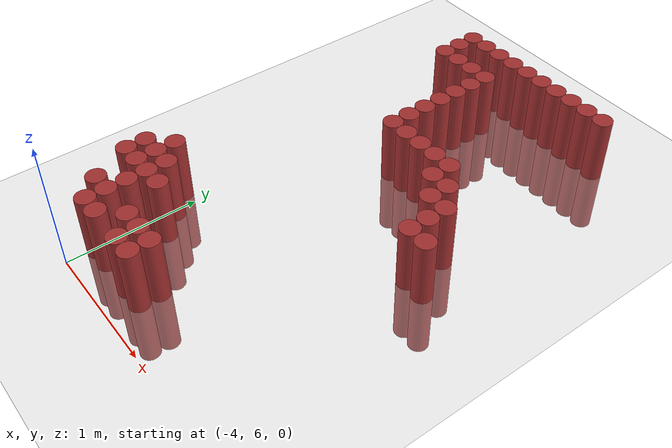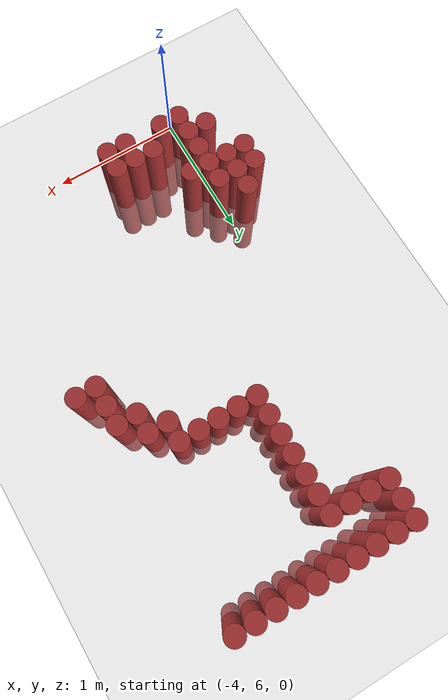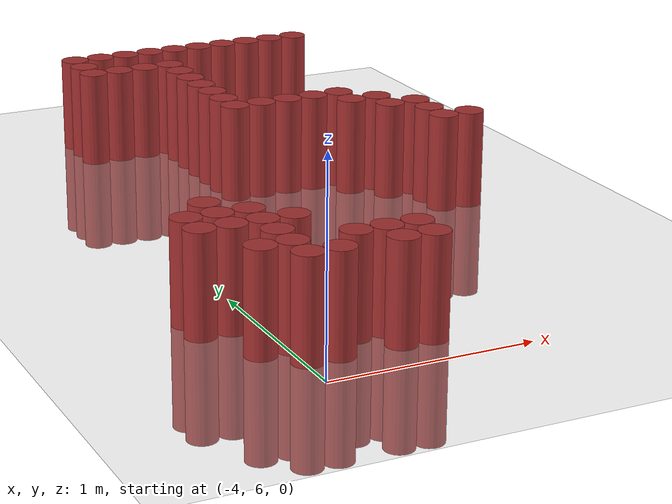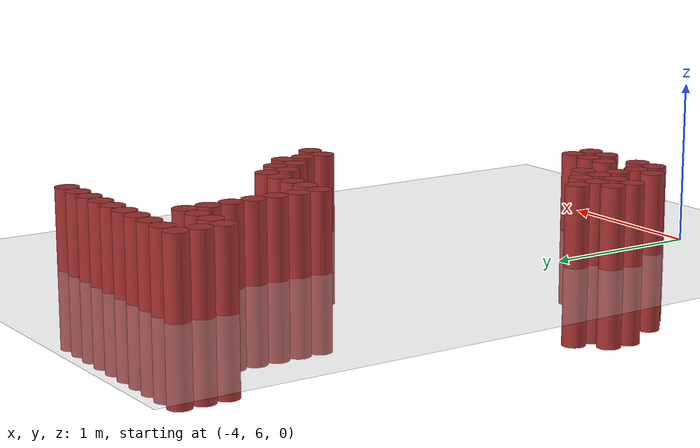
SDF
<sdf version="1.6">
 <world name="default">
  <model name="ground_plane">
   <static>1</static>
   <link name="link">
    <collision name="collision">
     <geometry><plane><normal>0 0 1</normal><size>100 100</size></plane></geometry>
     <surface><friction><ode><mu>100</mu><mu2>50</mu2></ode></friction></surface>
    </collision>
    <visual name="visual">
     <cast_shadows>0</cast_shadows>
     <geometry><plane><normal>0 0 1</normal><size>100 100</size></plane></geometry>
     <material>
      <script><uri>file://media/materials/scripts/gazebo.material</uri><name>Gazebo/Grey</name></script>
     </material>
    </visual>
   </link>
  </model>
  <model name="unit_cylinder_263">
   <static>1</static>
   <pose>-4.275000 6.675000 0.000000 0.000000 0.000000 0.000000</pose>
   <link name="link">
    <inertial>
     <mass>1</mass>
     <inertia><ixx>0.145833</ixx><ixy>0</ixy><ixz>0</ixz><iyy>0.145833</iyy><iyz>0</iyz><izz>0.125</izz></inertia>
    </inertial>
    <collision name="collision">
     <geometry><cylinder><radius>0.075000</radius><length>1</length></cylinder></geometry>
    </collision>
    <visual name="visual">
     <geometry><cylinder><radius>0.075000</radius><length>1</length></cylinder></geometry>
     <material>
      <ambient>0.648000 0.192000 0.192000 1</ambient>
      <diffuse>0.648000 0.192000 0.192000 1</diffuse>
     </material>
     <material>
      <script><name>Gazebo/Grey</name><uri>file://media/materials/scripts/gazebo.material</uri></script>
     </material>
    </visual>
   </link>
  </model>
  <model name="unit_cylinder_264">
   <static>1</static>
   <pose>-4.275000 6.825000 0.000000 0.000000 0.000000 0.000000</pose>
   <link name="link">
    <inertial>
     <mass>1</mass>
     <inertia><ixx>0.145833</ixx><ixy>0</ixy><ixz>0</ixz><iyy>0.145833</iyy><iyz>0</iyz><izz>0.125</izz></inertia>
    </inertial>
    <collision name="collision">
     <geometry><cylinder><radius>0.075000</radius><length>1</length></cylinder></geometry>
    </collision>
    <visual name="visual">
     <geometry><cylinder><radius>0.075000</radius><length>1</length></cylinder></geometry>
     <material>
      <ambient>0.648000 0.192000 0.192000 1</ambient>
      <diffuse>0.648000 0.192000 0.192000 1</diffuse>
     </material>
     <material>
      <script><name>Gazebo/Grey</name><uri>file://media/materials/scripts/gazebo.material</uri></script>
     </material>
    </visual>
   </link>
  </model>
  <model name="unit_cylinder_265">
   <static>1</static>
   <pose>-4.125000 6.375000 0.000000 0.000000 0.000000 0.000000</pose>
   <link name="link">
    <inertial>
     <mass>1</mass>
     <inertia><ixx>0.145833</ixx><ixy>0</ixy><ixz>0</ixz><iyy>0.145833</iyy><iyz>0</iyz><izz>0.125</izz></inertia>
    </inertial>
    <collision name="collision">
     <geometry><cylinder><radius>0.075000</radius><length>1</length></cylinder></geometry>
    </collision>
    <visual name="visual">
     <geometry><cylinder><radius>0.075000</radius><length>1</length></cylinder></geometry>
     <material>
      <ambient>0.648000 0.192000 0.192000 1</ambient>
      <diffuse>0.648000 0.192000 0.192000 1</diffuse>
     </material>
     <material>
      <script><name>Gazebo/Grey</name><uri>file://media/materials/scripts/gazebo.material</uri></script>
     </material>
    </visual>
   </link>
  </model>
  <model name="unit_cylinder_266">
   <static>1</static>
   <pose>-4.125000 6.675000 0.000000 0.000000 0.000000 0.000000</pose>
   <link name="link">
    <inertial>
     <mass>1</mass>
     <inertia><ixx>0.145833</ixx><ixy>0</ixy><ixz>0</ixz><iyy>0.145833</iyy><iyz>0</iyz><izz>0.125</izz></inertia>
    </inertial>
    <collision name="collision">
     <geometry><cylinder><radius>0.075000</radius><length>1</length></cylinder></geometry>
    </collision>
    <visual name="visual">
     <geometry><cylinder><radius>0.075000</radius><length>1</length></cylinder></geometry>
     <material>
      <ambient>0.648000 0.192000 0.192000 1</ambient>
      <diffuse>0.648000 0.192000 0.192000 1</diffuse>
     </material>
     <material>
      <script><name>Gazebo/Grey</name><uri>file://media/materials/scripts/gazebo.material</uri></script>
     </material>
    </visual>
   </link>
  </model>
  <model name="unit_cylinder_267">
   <static>1</static>
   <pose>-4.125000 6.825000 0.000000 0.000000 0.000000 0.000000</pose>
   <link name="link">
    <inertial>
     <mass>1</mass>
     <inertia><ixx>0.145833</ixx><ixy>0</ixy><ixz>0</ixz><iyy>0.145833</iyy><iyz>0</iyz><izz>0.125</izz></inertia>
    </inertial>
    <collision name="collision">
     <geometry><cylinder><radius>0.075000</radius><length>1</length></cylinder></geometry>
    </collision>
    <visual name="visual">
     <geometry><cylinder><radius>0.075000</radius><length>1</length></cylinder></geometry>
     <material>
      <ambient>0.648000 0.192000 0.192000 1</ambient>
      <diffuse>0.648000 0.192000 0.192000 1</diffuse>
     </material>
     <material>
      <script><name>Gazebo/Grey</name><uri>file://media/materials/scripts/gazebo.material</uri></script>
     </material>
    </visual>
   </link>
  </model>
  <model name="unit_cylinder_268">
   <static>1</static>
   <pose>-4.125000 6.975000 0.000000 0.000000 0.000000 0.000000</pose>
   <link name="link">
    <inertial>
     <mass>1</mass>
     <inertia><ixx>0.145833</ixx><ixy>0</ixy><ixz>0</ixz><iyy>0.145833</iyy><iyz>0</iyz><izz>0.125</izz></inertia>
    </inertial>
    <collision name="collision">
     <geometry><cylinder><radius>0.075000</radius><length>1</length></cylinder></geometry>
    </collision>
    <visual name="visual">
     <geometry><cylinder><radius>0.075000</radius><length>1</length></cylinder></geometry>
     <material>
      <ambient>0.648000 0.192000 0.192000 1</ambient>
      <diffuse>0.648000 0.192000 0.192000 1</diffuse>
     </material>
     <material>
      <script><name>Gazebo/Grey</name><uri>file://media/materials/scripts/gazebo.material</uri></script>
     </material>
    </visual>
   </link>
  </model>
  <model name="unit_cylinder_270">
   <static>1</static>
   <pose>-3.975000 6.225000 0.000000 0.000000 0.000000 0.000000</pose>
   <link name="link">
    <inertial>
     <mass>1</mass>
     <inertia><ixx>0.145833</ixx><ixy>0</ixy><ixz>0</ixz><iyy>0.145833</iyy><iyz>0</iyz><izz>0.125</izz></inertia>
    </inertial>
    <collision name="collision">
     <geometry><cylinder><radius>0.075000</radius><length>1</length></cylinder></geometry>
    </collision>
    <visual name="visual">
     <geometry><cylinder><radius>0.075000</radius><length>1</length></cylinder></geometry>
     <material>
      <ambient>0.648000 0.192000 0.192000 1</ambient>
      <diffuse>0.648000 0.192000 0.192000 1</diffuse>
     </material>
     <material>
      <script><name>Gazebo/Grey</name><uri>file://media/materials/scripts/gazebo.material</uri></script>
     </material>
    </visual>
   </link>
  </model>
  <model name="unit_cylinder_271">
   <static>1</static>
   <pose>-3.975000 6.375000 0.000000 0.000000 0.000000 0.000000</pose>
   <link name="link">
    <inertial>
     <mass>1</mass>
     <inertia><ixx>0.145833</ixx><ixy>0</ixy><ixz>0</ixz><iyy>0.145833</iyy><iyz>0</iyz><izz>0.125</izz></inertia>
    </inertial>
    <collision name="collision">
     <geometry><cylinder><radius>0.075000</radius><length>1</length></cylinder></geometry>
    </collision>
    <visual name="visual">
     <geometry><cylinder><radius>0.075000</radius><length>1</length></cylinder></geometry>
     <material>
      <ambient>0.648000 0.192000 0.192000 1</ambient>
      <diffuse>0.648000 0.192000 0.192000 1</diffuse>
     </material>
     <material>
      <script><name>Gazebo/Grey</name><uri>file://media/materials/scripts/gazebo.material</uri></script>
     </material>
    </visual>
   </link>
  </model>
  <model name="unit_cylinder_272">
   <static>1</static>
   <pose>-3.975000 6.525000 0.000000 0.000000 0.000000 0.000000</pose>
   <link name="link">
    <inertial>
     <mass>1</mass>
     <inertia><ixx>0.145833</ixx><ixy>0</ixy><ixz>0</ixz><iyy>0.145833</iyy><iyz>0</iyz><izz>0.125</izz></inertia>
    </inertial>
    <collision name="collision">
     <geometry><cylinder><radius>0.075000</radius><length>1</length></cylinder></geometry>
    </collision>
    <visual name="visual">
     <geometry><cylinder><radius>0.075000</radius><length>1</length></cylinder></geometry>
     <material>
      <ambient>0.648000 0.192000 0.192000 1</ambient>
      <diffuse>0.648000 0.192000 0.192000 1</diffuse>
     </material>
     <material>
      <script><name>Gazebo/Grey</name><uri>file://media/materials/scripts/gazebo.material</uri></script>
     </material>
    </visual>
   </link>
  </model>
  <model name="unit_cylinder_273">
   <static>1</static>
   <pose>-3.975000 6.675000 0.000000 0.000000 0.000000 0.000000</pose>
   <link name="link">
    <inertial>
     <mass>1</mass>
     <inertia><ixx>0.145833</ixx><ixy>0</ixy><ixz>0</ixz><iyy>0.145833</iyy><iyz>0</iyz><izz>0.125</izz></inertia>
    </inertial>
    <collision name="collision">
     <geometry><cylinder><radius>0.075000</radius><length>1</length></cylinder></geometry>
    </collision>
    <visual name="visual">
     <geometry><cylinder><radius>0.075000</radius><length>1</length></cylinder></geometry>
     <material>
      <ambient>0.648000 0.192000 0.192000 1</ambient>
      <diffuse>0.648000 0.192000 0.192000 1</diffuse>
     </material>
     <material>
      <script><name>Gazebo/Grey</name><uri>file://media/materials/scripts/gazebo.material</uri></script>
     </material>
    </visual>
   </link>
  </model>
  <model name="unit_cylinder_274">
   <static>1</static>
   <pose>-3.975000 6.825000 0.000000 0.000000 0.000000 0.000000</pose>
   <link name="link">
    <inertial>
     <mass>1</mass>
     <inertia><ixx>0.145833</ixx><ixy>0</ixy><ixz>0</ixz><iyy>0.145833</iyy><iyz>0</iyz><izz>0.125</izz></inertia>
    </inertial>
    <collision name="collision">
     <geometry><cylinder><radius>0.075000</radius><length>1</length></cylinder></geometry>
    </collision>
    <visual name="visual">
     <geometry><cylinder><radius>0.075000</radius><length>1</length></cylinder></geometry>
     <material>
      <ambient>0.648000 0.192000 0.192000 1</ambient>
      <diffuse>0.648000 0.192000 0.192000 1</diffuse>
     </material>
     <material>
      <script><name>Gazebo/Grey</name><uri>file://media/materials/scripts/gazebo.material</uri></script>
     </material>
    </visual>
   </link>
  </model>
  <model name="unit_cylinder_276">
   <static>1</static>
   <pose>-3.825000 6.225000 0.000000 0.000000 0.000000 0.000000</pose>
   <link name="link">
    <inertial>
     <mass>1</mass>
     <inertia><ixx>0.145833</ixx><ixy>0</ixy><ixz>0</ixz><iyy>0.145833</iyy><iyz>0</iyz><izz>0.125</izz></inertia>
    </inertial>
    <collision name="collision">
     <geometry><cylinder><radius>0.075000</radius><length>1</length></cylinder></geometry>
    </collision>
    <visual name="visual">
     <geometry><cylinder><radius>0.075000</radius><length>1</length></cylinder></geometry>
     <material>
      <ambient>0.648000 0.192000 0.192000 1</ambient>
      <diffuse>0.648000 0.192000 0.192000 1</diffuse>
     </material>
     <material>
      <script><name>Gazebo/Grey</name><uri>file://media/materials/scripts/gazebo.material</uri></script>
     </material>
    </visual>
   </link>
  </model>
  <model name="unit_cylinder_277">
   <static>1</static>
   <pose>-3.825000 6.675000 0.000000 0.000000 0.000000 0.000000</pose>
   <link name="link">
    <inertial>
     <mass>1</mass>
     <inertia><ixx>0.145833</ixx><ixy>0</ixy><ixz>0</ixz><iyy>0.145833</iyy><iyz>0</iyz><izz>0.125</izz></inertia>
    </inertial>
    <collision name="collision">
     <geometry><cylinder><radius>0.075000</radius><length>1</length></cylinder></geometry>
    </collision>
    <visual name="visual">
     <geometry><cylinder><radius>0.075000</radius><length>1</length></cylinder></geometry>
     <material>
      <ambient>0.648000 0.192000 0.192000 1</ambient>
      <diffuse>0.648000 0.192000 0.192000 1</diffuse>
     </material>
     <material>
      <script><name>Gazebo/Grey</name><uri>file://media/materials/scripts/gazebo.material</uri></script>
     </material>
    </visual>
   </link>
  </model>
  <model name="unit_cylinder_278">
   <static>1</static>
   <pose>-3.825000 9.225000 0.000000 0.000000 0.000000 0.000000</pose>
   <link name="link">
    <inertial>
     <mass>1</mass>
     <inertia><ixx>0.145833</ixx><ixy>0</ixy><ixz>0</ixz><iyy>0.145833</iyy><iyz>0</iyz><izz>0.125</izz></inertia>
    </inertial>
    <collision name="collision">
     <geometry><cylinder><radius>0.075000</radius><length>1</length></cylinder></geometry>
    </collision>
    <visual name="visual">
     <geometry><cylinder><radius>0.075000</radius><length>1</length></cylinder></geometry>
     <material>
      <ambient>0.648000 0.192000 0.192000 1</ambient>
      <diffuse>0.648000 0.192000 0.192000 1</diffuse>
     </material>
     <material>
      <script><name>Gazebo/Grey</name><uri>file://media/materials/scripts/gazebo.material</uri></script>
     </material>
    </visual>
   </link>
  </model>
  <model name="unit_cylinder_279">
   <static>1</static>
   <pose>-3.825000 9.375000 0.000000 0.000000 0.000000 0.000000</pose>
   <link name="link">
    <inertial>
     <mass>1</mass>
     <inertia><ixx>0.145833</ixx><ixy>0</ixy><ixz>0</ixz><iyy>0.145833</iyy><iyz>0</iyz><izz>0.125</izz></inertia>
    </inertial>
    <collision name="collision">
     <geometry><cylinder><radius>0.075000</radius><length>1</length></cylinder></geometry>
    </collision>
    <visual name="visual">
     <geometry><cylinder><radius>0.075000</radius><length>1</length></cylinder></geometry>
     <material>
      <ambient>0.648000 0.192000 0.192000 1</ambient>
      <diffuse>0.648000 0.192000 0.192000 1</diffuse>
     </material>
     <material>
      <script><name>Gazebo/Grey</name><uri>file://media/materials/scripts/gazebo.material</uri></script>
     </material>
    </visual>
   </link>
  </model>
  <model name="unit_cylinder_280">
   <static>1</static>
   <pose>-3.825000 9.525000 0.000000 0.000000 0.000000 0.000000</pose>
   <link name="link">
    <inertial>
     <mass>1</mass>
     <inertia><ixx>0.145833</ixx><ixy>0</ixy><ixz>0</ixz><iyy>0.145833</iyy><iyz>0</iyz><izz>0.125</izz></inertia>
    </inertial>
    <collision name="collision">
     <geometry><cylinder><radius>0.075000</radius><length>1</length></cylinder></geometry>
    </collision>
    <visual name="visual">
     <geometry><cylinder><radius>0.075000</radius><length>1</length></cylinder></geometry>
     <material>
      <ambient>0.648000 0.192000 0.192000 1</ambient>
      <diffuse>0.648000 0.192000 0.192000 1</diffuse>
     </material>
     <material>
      <script><name>Gazebo/Grey</name><uri>file://media/materials/scripts/gazebo.material</uri></script>
     </material>
    </visual>
   </link>
  </model>
  <model name="unit_cylinder_285">
   <static>1</static>
   <pose>-3.675000 6.375000 0.000000 0.000000 0.000000 0.000000</pose>
   <link name="link">
    <inertial>
     <mass>1</mass>
     <inertia><ixx>0.145833</ixx><ixy>0</ixy><ixz>0</ixz><iyy>0.145833</iyy><iyz>0</iyz><izz>0.125</izz></inertia>
    </inertial>
    <collision name="collision">
     <geometry><cylinder><radius>0.075000</radius><length>1</length></cylinder></geometry>
    </collision>
    <visual name="visual">
     <geometry><cylinder><radius>0.075000</radius><length>1</length></cylinder></geometry>
     <material>
      <ambient>0.648000 0.192000 0.192000 1</ambient>
      <diffuse>0.648000 0.192000 0.192000 1</diffuse>
     </material>
     <material>
      <script><name>Gazebo/Grey</name><uri>file://media/materials/scripts/gazebo.material</uri></script>
     </material>
    </visual>
   </link>
  </model>
  <model name="unit_cylinder_286">
   <static>1</static>
   <pose>-3.675000 9.225000 0.000000 0.000000 0.000000 0.000000</pose>
   <link name="link">
    <inertial>
     <mass>1</mass>
     <inertia><ixx>0.145833</ixx><ixy>0</ixy><ixz>0</ixz><iyy>0.145833</iyy><iyz>0</iyz><izz>0.125</izz></inertia>
    </inertial>
    <collision name="collision">
     <geometry><cylinder><radius>0.075000</radius><length>1</length></cylinder></geometry>
    </collision>
    <visual name="visual">
     <geometry><cylinder><radius>0.075000</radius><length>1</length></cylinder></geometry>
     <material>
      <ambient>0.648000 0.192000 0.192000 1</ambient>
      <diffuse>0.648000 0.192000 0.192000 1</diffuse>
     </material>
     <material>
      <script><name>Gazebo/Grey</name><uri>file://media/materials/scripts/gazebo.material</uri></script>
     </material>
    </visual>
   </link>
  </model>
  <model name="unit_cylinder_287">
   <static>1</static>
   <pose>-3.675000 9.525000 0.000000 0.000000 0.000000 0.000000</pose>
   <link name="link">
    <inertial>
     <mass>1</mass>
     <inertia><ixx>0.145833</ixx><ixy>0</ixy><ixz>0</ixz><iyy>0.145833</iyy><iyz>0</iyz><izz>0.125</izz></inertia>
    </inertial>
    <collision name="collision">
     <geometry><cylinder><radius>0.075000</radius><length>1</length></cylinder></geometry>
    </collision>
    <visual name="visual">
     <geometry><cylinder><radius>0.075000</radius><length>1</length></cylinder></geometry>
     <material>
      <ambient>0.648000 0.192000 0.192000 1</ambient>
      <diffuse>0.648000 0.192000 0.192000 1</diffuse>
     </material>
     <material>
      <script><name>Gazebo/Grey</name><uri>file://media/materials/scripts/gazebo.material</uri></script>
     </material>
    </visual>
   </link>
  </model>
  <model name="unit_cylinder_291">
   <static>1</static>
   <pose>-3.525000 6.225000 0.000000 0.000000 0.000000 0.000000</pose>
   <link name="link">
    <inertial>
     <mass>1</mass>
     <inertia><ixx>0.145833</ixx><ixy>0</ixy><ixz>0</ixz><iyy>0.145833</iyy><iyz>0</iyz><izz>0.125</izz></inertia>
    </inertial>
    <collision name="collision">
     <geometry><cylinder><radius>0.075000</radius><length>1</length></cylinder></geometry>
    </collision>
    <visual name="visual">
     <geometry><cylinder><radius>0.075000</radius><length>1</length></cylinder></geometry>
     <material>
      <ambient>0.648000 0.192000 0.192000 1</ambient>
      <diffuse>0.648000 0.192000 0.192000 1</diffuse>
     </material>
     <material>
      <script><name>Gazebo/Grey</name><uri>file://media/materials/scripts/gazebo.material</uri></script>
     </material>
    </visual>
   </link>
  </model>
  <model name="unit_cylinder_292">
   <static>1</static>
   <pose>-3.525000 6.375000 0.000000 0.000000 0.000000 0.000000</pose>
   <link name="link">
    <inertial>
     <mass>1</mass>
     <inertia><ixx>0.145833</ixx><ixy>0</ixy><ixz>0</ixz><iyy>0.145833</iyy><iyz>0</iyz><izz>0.125</izz></inertia>
    </inertial>
    <collision name="collision">
     <geometry><cylinder><radius>0.075000</radius><length>1</length></cylinder></geometry>
    </collision>
    <visual name="visual">
     <geometry><cylinder><radius>0.075000</radius><length>1</length></cylinder></geometry>
     <material>
      <ambient>0.648000 0.192000 0.192000 1</ambient>
      <diffuse>0.648000 0.192000 0.192000 1</diffuse>
     </material>
     <material>
      <script><name>Gazebo/Grey</name><uri>file://media/materials/scripts/gazebo.material</uri></script>
     </material>
    </visual>
   </link>
  </model>
  <model name="unit_cylinder_293">
   <static>1</static>
   <pose>-3.525000 9.225000 0.000000 0.000000 0.000000 0.000000</pose>
   <link name="link">
    <inertial>
     <mass>1</mass>
     <inertia><ixx>0.145833</ixx><ixy>0</ixy><ixz>0</ixz><iyy>0.145833</iyy><iyz>0</iyz><izz>0.125</izz></inertia>
    </inertial>
    <collision name="collision">
     <geometry><cylinder><radius>0.075000</radius><length>1</length></cylinder></geometry>
    </collision>
    <visual name="visual">
     <geometry><cylinder><radius>0.075000</radius><length>1</length></cylinder></geometry>
     <material>
      <ambient>0.648000 0.192000 0.192000 1</ambient>
      <diffuse>0.648000 0.192000 0.192000 1</diffuse>
     </material>
     <material>
      <script><name>Gazebo/Grey</name><uri>file://media/materials/scripts/gazebo.material</uri></script>
     </material>
    </visual>
   </link>
  </model>
  <model name="unit_cylinder_294">
   <static>1</static>
   <pose>-3.525000 9.525000 0.000000 0.000000 0.000000 0.000000</pose>
   <link name="link">
    <inertial>
     <mass>1</mass>
     <inertia><ixx>0.145833</ixx><ixy>0</ixy><ixz>0</ixz><iyy>0.145833</iyy><iyz>0</iyz><izz>0.125</izz></inertia>
    </inertial>
    <collision name="collision">
     <geometry><cylinder><radius>0.075000</radius><length>1</length></cylinder></geometry>
    </collision>
    <visual name="visual">
     <geometry><cylinder><radius>0.075000</radius><length>1</length></cylinder></geometry>
     <material>
      <ambient>0.648000 0.192000 0.192000 1</ambient>
      <diffuse>0.648000 0.192000 0.192000 1</diffuse>
     </material>
     <material>
      <script><name>Gazebo/Grey</name><uri>file://media/materials/scripts/gazebo.material</uri></script>
     </material>
    </visual>
   </link>
  </model>
  <model name="unit_cylinder_299">
   <static>1</static>
   <pose>-3.375000 6.225000 0.000000 0.000000 0.000000 0.000000</pose>
   <link name="link">
    <inertial>
     <mass>1</mass>
     <inertia><ixx>0.145833</ixx><ixy>0</ixy><ixz>0</ixz><iyy>0.145833</iyy><iyz>0</iyz><izz>0.125</izz></inertia>
    </inertial>
    <collision name="collision">
     <geometry><cylinder><radius>0.075000</radius><length>1</length></cylinder></geometry>
    </collision>
    <visual name="visual">
     <geometry><cylinder><radius>0.075000</radius><length>1</length></cylinder></geometry>
     <material>
      <ambient>0.648000 0.192000 0.192000 1</ambient>
      <diffuse>0.648000 0.192000 0.192000 1</diffuse>
     </material>
     <material>
      <script><name>Gazebo/Grey</name><uri>file://media/materials/scripts/gazebo.material</uri></script>
     </material>
    </visual>
   </link>
  </model>
  <model name="unit_cylinder_300">
   <static>1</static>
   <pose>-3.375000 6.375000 0.000000 0.000000 0.000000 0.000000</pose>
   <link name="link">
    <inertial>
     <mass>1</mass>
     <inertia><ixx>0.145833</ixx><ixy>0</ixy><ixz>0</ixz><iyy>0.145833</iyy><iyz>0</iyz><izz>0.125</izz></inertia>
    </inertial>
    <collision name="collision">
     <geometry><cylinder><radius>0.075000</radius><length>1</length></cylinder></geometry>
    </collision>
    <visual name="visual">
     <geometry><cylinder><radius>0.075000</radius><length>1</length></cylinder></geometry>
     <material>
      <ambient>0.648000 0.192000 0.192000 1</ambient>
      <diffuse>0.648000 0.192000 0.192000 1</diffuse>
     </material>
     <material>
      <script><name>Gazebo/Grey</name><uri>file://media/materials/scripts/gazebo.material</uri></script>
     </material>
    </visual>
   </link>
  </model>
  <model name="unit_cylinder_301">
   <static>1</static>
   <pose>-3.375000 8.325000 0.000000 0.000000 0.000000 0.000000</pose>
   <link name="link">
    <inertial>
     <mass>1</mass>
     <inertia><ixx>0.145833</ixx><ixy>0</ixy><ixz>0</ixz><iyy>0.145833</iyy><iyz>0</iyz><izz>0.125</izz></inertia>
    </inertial>
    <collision name="collision">
     <geometry><cylinder><radius>0.075000</radius><length>1</length></cylinder></geometry>
    </collision>
    <visual name="visual">
     <geometry><cylinder><radius>0.075000</radius><length>1</length></cylinder></geometry>
     <material>
      <ambient>0.648000 0.192000 0.192000 1</ambient>
      <diffuse>0.648000 0.192000 0.192000 1</diffuse>
     </material>
     <material>
      <script><name>Gazebo/Grey</name><uri>file://media/materials/scripts/gazebo.material</uri></script>
     </material>
    </visual>
   </link>
  </model>
  <model name="unit_cylinder_302">
   <static>1</static>
   <pose>-3.375000 8.475000 0.000000 0.000000 0.000000 0.000000</pose>
   <link name="link">
    <inertial>
     <mass>1</mass>
     <inertia><ixx>0.145833</ixx><ixy>0</ixy><ixz>0</ixz><iyy>0.145833</iyy><iyz>0</iyz><izz>0.125</izz></inertia>
    </inertial>
    <collision name="collision">
     <geometry><cylinder><radius>0.075000</radius><length>1</length></cylinder></geometry>
    </collision>
    <visual name="visual">
     <geometry><cylinder><radius>0.075000</radius><length>1</length></cylinder></geometry>
     <material>
      <ambient>0.648000 0.192000 0.192000 1</ambient>
      <diffuse>0.648000 0.192000 0.192000 1</diffuse>
     </material>
     <material>
      <script><name>Gazebo/Grey</name><uri>file://media/materials/scripts/gazebo.material</uri></script>
     </material>
    </visual>
   </link>
  </model>
  <model name="unit_cylinder_303">
   <static>1</static>
   <pose>-3.375000 8.625000 0.000000 0.000000 0.000000 0.000000</pose>
   <link name="link">
    <inertial>
     <mass>1</mass>
     <inertia><ixx>0.145833</ixx><ixy>0</ixy><ixz>0</ixz><iyy>0.145833</iyy><iyz>0</iyz><izz>0.125</izz></inertia>
    </inertial>
    <collision name="collision">
     <geometry><cylinder><radius>0.075000</radius><length>1</length></cylinder></geometry>
    </collision>
    <visual name="visual">
     <geometry><cylinder><radius>0.075000</radius><length>1</length></cylinder></geometry>
     <material>
      <ambient>0.648000 0.192000 0.192000 1</ambient>
      <diffuse>0.648000 0.192000 0.192000 1</diffuse>
     </material>
     <material>
      <script><name>Gazebo/Grey</name><uri>file://media/materials/scripts/gazebo.material</uri></script>
     </material>
    </visual>
   </link>
  </model>
  <model name="unit_cylinder_304">
   <static>1</static>
   <pose>-3.375000 8.775000 0.000000 0.000000 0.000000 0.000000</pose>
   <link name="link">
    <inertial>
     <mass>1</mass>
     <inertia><ixx>0.145833</ixx><ixy>0</ixy><ixz>0</ixz><iyy>0.145833</iyy><iyz>0</iyz><izz>0.125</izz></inertia>
    </inertial>
    <collision name="collision">
     <geometry><cylinder><radius>0.075000</radius><length>1</length></cylinder></geometry>
    </collision>
    <visual name="visual">
     <geometry><cylinder><radius>0.075000</radius><length>1</length></cylinder></geometry>
     <material>
      <ambient>0.648000 0.192000 0.192000 1</ambient>
      <diffuse>0.648000 0.192000 0.192000 1</diffuse>
     </material>
     <material>
      <script><name>Gazebo/Grey</name><uri>file://media/materials/scripts/gazebo.material</uri></script>
     </material>
    </visual>
   </link>
  </model>
  <model name="unit_cylinder_305">
   <static>1</static>
   <pose>-3.375000 8.925000 0.000000 0.000000 0.000000 0.000000</pose>
   <link name="link">
    <inertial>
     <mass>1</mass>
     <inertia><ixx>0.145833</ixx><ixy>0</ixy><ixz>0</ixz><iyy>0.145833</iyy><iyz>0</iyz><izz>0.125</izz></inertia>
    </inertial>
    <collision name="collision">
     <geometry><cylinder><radius>0.075000</radius><length>1</length></cylinder></geometry>
    </collision>
    <visual name="visual">
     <geometry><cylinder><radius>0.075000</radius><length>1</length></cylinder></geometry>
     <material>
      <ambient>0.648000 0.192000 0.192000 1</ambient>
      <diffuse>0.648000 0.192000 0.192000 1</diffuse>
     </material>
     <material>
      <script><name>Gazebo/Grey</name><uri>file://media/materials/scripts/gazebo.material</uri></script>
     </material>
    </visual>
   </link>
  </model>
  <model name="unit_cylinder_306">
   <static>1</static>
   <pose>-3.375000 9.075000 0.000000 0.000000 0.000000 0.000000</pose>
   <link name="link">
    <inertial>
     <mass>1</mass>
     <inertia><ixx>0.145833</ixx><ixy>0</ixy><ixz>0</ixz><iyy>0.145833</iyy><iyz>0</iyz><izz>0.125</izz></inertia>
    </inertial>
    <collision name="collision">
     <geometry><cylinder><radius>0.075000</radius><length>1</length></cylinder></geometry>
    </collision>
    <visual name="visual">
     <geometry><cylinder><radius>0.075000</radius><length>1</length></cylinder></geometry>
     <material>
      <ambient>0.648000 0.192000 0.192000 1</ambient>
      <diffuse>0.648000 0.192000 0.192000 1</diffuse>
     </material>
     <material>
      <script><name>Gazebo/Grey</name><uri>file://media/materials/scripts/gazebo.material</uri></script>
     </material>
    </visual>
   </link>
  </model>
  <model name="unit_cylinder_307">
   <static>1</static>
   <pose>-3.375000 9.225000 0.000000 0.000000 0.000000 0.000000</pose>
   <link name="link">
    <inertial>
     <mass>1</mass>
     <inertia><ixx>0.145833</ixx><ixy>0</ixy><ixz>0</ixz><iyy>0.145833</iyy><iyz>0</iyz><izz>0.125</izz></inertia>
    </inertial>
    <collision name="collision">
     <geometry><cylinder><radius>0.075000</radius><length>1</length></cylinder></geometry>
    </collision>
    <visual name="visual">
     <geometry><cylinder><radius>0.075000</radius><length>1</length></cylinder></geometry>
     <material>
      <ambient>0.648000 0.192000 0.192000 1</ambient>
      <diffuse>0.648000 0.192000 0.192000 1</diffuse>
     </material>
     <material>
      <script><name>Gazebo/Grey</name><uri>file://media/materials/scripts/gazebo.material</uri></script>
     </material>
    </visual>
   </link>
  </model>
  <model name="unit_cylinder_308">
   <static>1</static>
   <pose>-3.375000 9.525000 0.000000 0.000000 0.000000 0.000000</pose>
   <link name="link">
    <inertial>
     <mass>1</mass>
     <inertia><ixx>0.145833</ixx><ixy>0</ixy><ixz>0</ixz><iyy>0.145833</iyy><iyz>0</iyz><izz>0.125</izz></inertia>
    </inertial>
    <collision name="collision">
     <geometry><cylinder><radius>0.075000</radius><length>1</length></cylinder></geometry>
    </collision>
    <visual name="visual">
     <geometry><cylinder><radius>0.075000</radius><length>1</length></cylinder></geometry>
     <material>
      <ambient>0.648000 0.192000 0.192000 1</ambient>
      <diffuse>0.648000 0.192000 0.192000 1</diffuse>
     </material>
     <material>
      <script><name>Gazebo/Grey</name><uri>file://media/materials/scripts/gazebo.material</uri></script>
     </material>
    </visual>
   </link>
  </model>
  <model name="unit_cylinder_309">
   <static>1</static>
   <pose>-3.225000 8.325000 0.000000 0.000000 0.000000 0.000000</pose>
   <link name="link">
    <inertial>
     <mass>1</mass>
     <inertia><ixx>0.145833</ixx><ixy>0</ixy><ixz>0</ixz><iyy>0.145833</iyy><iyz>0</iyz><izz>0.125</izz></inertia>
    </inertial>
    <collision name="collision">
     <geometry><cylinder><radius>0.075000</radius><length>1</length></cylinder></geometry>
    </collision>
    <visual name="visual">
     <geometry><cylinder><radius>0.075000</radius><length>1</length></cylinder></geometry>
     <material>
      <ambient>0.648000 0.192000 0.192000 1</ambient>
      <diffuse>0.648000 0.192000 0.192000 1</diffuse>
     </material>
     <material>
      <script><name>Gazebo/Grey</name><uri>file://media/materials/scripts/gazebo.material</uri></script>
     </material>
    </visual>
   </link>
  </model>
  <model name="unit_cylinder_310">
   <static>1</static>
   <pose>-3.225000 9.525000 0.000000 0.000000 0.000000 0.000000</pose>
   <link name="link">
    <inertial>
     <mass>1</mass>
     <inertia><ixx>0.145833</ixx><ixy>0</ixy><ixz>0</ixz><iyy>0.145833</iyy><iyz>0</iyz><izz>0.125</izz></inertia>
    </inertial>
    <collision name="collision">
     <geometry><cylinder><radius>0.075000</radius><length>1</length></cylinder></geometry>
    </collision>
    <visual name="visual">
     <geometry><cylinder><radius>0.075000</radius><length>1</length></cylinder></geometry>
     <material>
      <ambient>0.648000 0.192000 0.192000 1</ambient>
      <diffuse>0.648000 0.192000 0.192000 1</diffuse>
     </material>
     <material>
      <script><name>Gazebo/Grey</name><uri>file://media/materials/scripts/gazebo.material</uri></script>
     </material>
    </visual>
   </link>
  </model>
  <model name="unit_cylinder_311">
   <static>1</static>
   <pose>-3.075000 8.325000 0.000000 0.000000 0.000000 0.000000</pose>
   <link name="link">
    <inertial>
     <mass>1</mass>
     <inertia><ixx>0.145833</ixx><ixy>0</ixy><ixz>0</ixz><iyy>0.145833</iyy><iyz>0</iyz><izz>0.125</izz></inertia>
    </inertial>
    <collision name="collision">
     <geometry><cylinder><radius>0.075000</radius><length>1</length></cylinder></geometry>
    </collision>
    <visual name="visual">
     <geometry><cylinder><radius>0.075000</radius><length>1</length></cylinder></geometry>
     <material>
      <ambient>0.648000 0.192000 0.192000 1</ambient>
      <diffuse>0.648000 0.192000 0.192000 1</diffuse>
     </material>
     <material>
      <script><name>Gazebo/Grey</name><uri>file://media/materials/scripts/gazebo.material</uri></script>
     </material>
    </visual>
   </link>
  </model>
  <model name="unit_cylinder_312">
   <static>1</static>
   <pose>-3.075000 9.525000 0.000000 0.000000 0.000000 0.000000</pose>
   <link name="link">
    <inertial>
     <mass>1</mass>
     <inertia><ixx>0.145833</ixx><ixy>0</ixy><ixz>0</ixz><iyy>0.145833</iyy><iyz>0</iyz><izz>0.125</izz></inertia>
    </inertial>
    <collision name="collision">
     <geometry><cylinder><radius>0.075000</radius><length>1</length></cylinder></geometry>
    </collision>
    <visual name="visual">
     <geometry><cylinder><radius>0.075000</radius><length>1</length></cylinder></geometry>
     <material>
      <ambient>0.648000 0.192000 0.192000 1</ambient>
      <diffuse>0.648000 0.192000 0.192000 1</diffuse>
     </material>
     <material>
      <script><name>Gazebo/Grey</name><uri>file://media/materials/scripts/gazebo.material</uri></script>
     </material>
    </visual>
   </link>
  </model>
  <model name="unit_cylinder_313">
   <static>1</static>
   <pose>-2.925000 8.325000 0.000000 0.000000 0.000000 0.000000</pose>
   <link name="link">
    <inertial>
     <mass>1</mass>
     <inertia><ixx>0.145833</ixx><ixy>0</ixy><ixz>0</ixz><iyy>0.145833</iyy><iyz>0</iyz><izz>0.125</izz></inertia>
    </inertial>
    <collision name="collision">
     <geometry><cylinder><radius>0.075000</radius><length>1</length></cylinder></geometry>
    </collision>
    <visual name="visual">
     <geometry><cylinder><radius>0.075000</radius><length>1</length></cylinder></geometry>
     <material>
      <ambient>0.648000 0.192000 0.192000 1</ambient>
      <diffuse>0.648000 0.192000 0.192000 1</diffuse>
     </material>
     <material>
      <script><name>Gazebo/Grey</name><uri>file://media/materials/scripts/gazebo.material</uri></script>
     </material>
    </visual>
   </link>
  </model>
  <model name="unit_cylinder_314">
   <static>1</static>
   <pose>-2.925000 9.525000 0.000000 0.000000 0.000000 0.000000</pose>
   <link name="link">
    <inertial>
     <mass>1</mass>
     <inertia><ixx>0.145833</ixx><ixy>0</ixy><ixz>0</ixz><iyy>0.145833</iyy><iyz>0</iyz><izz>0.125</izz></inertia>
    </inertial>
    <collision name="collision">
     <geometry><cylinder><radius>0.075000</radius><length>1</length></cylinder></geometry>
    </collision>
    <visual name="visual">
     <geometry><cylinder><radius>0.075000</radius><length>1</length></cylinder></geometry>
     <material>
      <ambient>0.648000 0.192000 0.192000 1</ambient>
      <diffuse>0.648000 0.192000 0.192000 1</diffuse>
     </material>
     <material>
      <script><name>Gazebo/Grey</name><uri>file://media/materials/scripts/gazebo.material</uri></script>
     </material>
    </visual>
   </link>
  </model>
  <model name="unit_cylinder_315">
   <static>1</static>
   <pose>-2.775000 8.175000 0.000000 0.000000 0.000000 0.000000</pose>
   <link name="link">
    <inertial>
     <mass>1</mass>
     <inertia><ixx>0.145833</ixx><ixy>0</ixy><ixz>0</ixz><iyy>0.145833</iyy><iyz>0</iyz><izz>0.125</izz></inertia>
    </inertial>
    <collision name="collision">
     <geometry><cylinder><radius>0.075000</radius><length>1</length></cylinder></geometry>
    </collision>
    <visual name="visual">
     <geometry><cylinder><radius>0.075000</radius><length>1</length></cylinder></geometry>
     <material>
      <ambient>0.648000 0.192000 0.192000 1</ambient>
      <diffuse>0.648000 0.192000 0.192000 1</diffuse>
     </material>
     <material>
      <script><name>Gazebo/Grey</name><uri>file://media/materials/scripts/gazebo.material</uri></script>
     </material>
    </visual>
   </link>
  </model>
  <model name="unit_cylinder_316">
   <static>1</static>
   <pose>-2.775000 8.325000 0.000000 0.000000 0.000000 0.000000</pose>
   <link name="link">
    <inertial>
     <mass>1</mass>
     <inertia><ixx>0.145833</ixx><ixy>0</ixy><ixz>0</ixz><iyy>0.145833</iyy><iyz>0</iyz><izz>0.125</izz></inertia>
    </inertial>
    <collision name="collision">
     <geometry><cylinder><radius>0.075000</radius><length>1</length></cylinder></geometry>
    </collision>
    <visual name="visual">
     <geometry><cylinder><radius>0.075000</radius><length>1</length></cylinder></geometry>
     <material>
      <ambient>0.648000 0.192000 0.192000 1</ambient>
      <diffuse>0.648000 0.192000 0.192000 1</diffuse>
     </material>
     <material>
      <script><name>Gazebo/Grey</name><uri>file://media/materials/scripts/gazebo.material</uri></script>
     </material>
    </visual>
   </link>
  </model>
  <model name="unit_cylinder_317">
   <static>1</static>
   <pose>-2.775000 9.525000 0.000000 0.000000 0.000000 0.000000</pose>
   <link name="link">
    <inertial>
     <mass>1</mass>
     <inertia><ixx>0.145833</ixx><ixy>0</ixy><ixz>0</ixz><iyy>0.145833</iyy><iyz>0</iyz><izz>0.125</izz></inertia>
    </inertial>
    <collision name="collision">
     <geometry><cylinder><radius>0.075000</radius><length>1</length></cylinder></geometry>
    </collision>
    <visual name="visual">
     <geometry><cylinder><radius>0.075000</radius><length>1</length></cylinder></geometry>
     <material>
      <ambient>0.648000 0.192000 0.192000 1</ambient>
      <diffuse>0.648000 0.192000 0.192000 1</diffuse>
     </material>
     <material>
      <script><name>Gazebo/Grey</name><uri>file://media/materials/scripts/gazebo.material</uri></script>
     </material>
    </visual>
   </link>
  </model>
  <model name="unit_cylinder_318">
   <static>1</static>
   <pose>-2.625000 8.025000 0.000000 0.000000 0.000000 0.000000</pose>
   <link name="link">
    <inertial>
     <mass>1</mass>
     <inertia><ixx>0.145833</ixx><ixy>0</ixy><ixz>0</ixz><iyy>0.145833</iyy><iyz>0</iyz><izz>0.125</izz></inertia>
    </inertial>
    <collision name="collision">
     <geometry><cylinder><radius>0.075000</radius><length>1</length></cylinder></geometry>
    </collision>
    <visual name="visual">
     <geometry><cylinder><radius>0.075000</radius><length>1</length></cylinder></geometry>
     <material>
      <ambient>0.648000 0.192000 0.192000 1</ambient>
      <diffuse>0.648000 0.192000 0.192000 1</diffuse>
     </material>
     <material>
      <script><name>Gazebo/Grey</name><uri>file://media/materials/scripts/gazebo.material</uri></script>
     </material>
    </visual>
   </link>
  </model>
  <model name="unit_cylinder_319">
   <static>1</static>
   <pose>-2.625000 8.175000 0.000000 0.000000 0.000000 0.000000</pose>
   <link name="link">
    <inertial>
     <mass>1</mass>
     <inertia><ixx>0.145833</ixx><ixy>0</ixy><ixz>0</ixz><iyy>0.145833</iyy><iyz>0</iyz><izz>0.125</izz></inertia>
    </inertial>
    <collision name="collision">
     <geometry><cylinder><radius>0.075000</radius><length>1</length></cylinder></geometry>
    </collision>
    <visual name="visual">
     <geometry><cylinder><radius>0.075000</radius><length>1</length></cylinder></geometry>
     <material>
      <ambient>0.648000 0.192000 0.192000 1</ambient>
      <diffuse>0.648000 0.192000 0.192000 1</diffuse>
     </material>
     <material>
      <script><name>Gazebo/Grey</name><uri>file://media/materials/scripts/gazebo.material</uri></script>
     </material>
    </visual>
   </link>
  </model>
  <model name="unit_cylinder_320">
   <static>1</static>
   <pose>-2.625000 9.525000 0.000000 0.000000 0.000000 0.000000</pose>
   <link name="link">
    <inertial>
     <mass>1</mass>
     <inertia><ixx>0.145833</ixx><ixy>0</ixy><ixz>0</ixz><iyy>0.145833</iyy><iyz>0</iyz><izz>0.125</izz></inertia>
    </inertial>
    <collision name="collision">
     <geometry><cylinder><radius>0.075000</radius><length>1</length></cylinder></geometry>
    </collision>
    <visual name="visual">
     <geometry><cylinder><radius>0.075000</radius><length>1</length></cylinder></geometry>
     <material>
      <ambient>0.648000 0.192000 0.192000 1</ambient>
      <diffuse>0.648000 0.192000 0.192000 1</diffuse>
     </material>
     <material>
      <script><name>Gazebo/Grey</name><uri>file://media/materials/scripts/gazebo.material</uri></script>
     </material>
    </visual>
   </link>
  </model>
  <model name="unit_cylinder_321">
   <static>1</static>
   <pose>-2.475000 7.725000 0.000000 0.000000 0.000000 0.000000</pose>
   <link name="link">
    <inertial>
     <mass>1</mass>
     <inertia><ixx>0.145833</ixx><ixy>0</ixy><ixz>0</ixz><iyy>0.145833</iyy><iyz>0</iyz><izz>0.125</izz></inertia>
    </inertial>
    <collision name="collision">
     <geometry><cylinder><radius>0.075000</radius><length>1</length></cylinder></geometry>
    </collision>
    <visual name="visual">
     <geometry><cylinder><radius>0.075000</radius><length>1</length></cylinder></geometry>
     <material>
      <ambient>0.648000 0.192000 0.192000 1</ambient>
      <diffuse>0.648000 0.192000 0.192000 1</diffuse>
     </material>
     <material>
      <script><name>Gazebo/Grey</name><uri>file://media/materials/scripts/gazebo.material</uri></script>
     </material>
    </visual>
   </link>
  </model>
  <model name="unit_cylinder_322">
   <static>1</static>
   <pose>-2.475000 7.875000 0.000000 0.000000 0.000000 0.000000</pose>
   <link name="link">
    <inertial>
     <mass>1</mass>
     <inertia><ixx>0.145833</ixx><ixy>0</ixy><ixz>0</ixz><iyy>0.145833</iyy><iyz>0</iyz><izz>0.125</izz></inertia>
    </inertial>
    <collision name="collision">
     <geometry><cylinder><radius>0.075000</radius><length>1</length></cylinder></geometry>
    </collision>
    <visual name="visual">
     <geometry><cylinder><radius>0.075000</radius><length>1</length></cylinder></geometry>
     <material>
      <ambient>0.648000 0.192000 0.192000 1</ambient>
      <diffuse>0.648000 0.192000 0.192000 1</diffuse>
     </material>
     <material>
      <script><name>Gazebo/Grey</name><uri>file://media/materials/scripts/gazebo.material</uri></script>
     </material>
    </visual>
   </link>
  </model>
  <model name="unit_cylinder_323">
   <static>1</static>
   <pose>-2.475000 8.025000 0.000000 0.000000 0.000000 0.000000</pose>
   <link name="link">
    <inertial>
     <mass>1</mass>
     <inertia><ixx>0.145833</ixx><ixy>0</ixy><ixz>0</ixz><iyy>0.145833</iyy><iyz>0</iyz><izz>0.125</izz></inertia>
    </inertial>
    <collision name="collision">
     <geometry><cylinder><radius>0.075000</radius><length>1</length></cylinder></geometry>
    </collision>
    <visual name="visual">
     <geometry><cylinder><radius>0.075000</radius><length>1</length></cylinder></geometry>
     <material>
      <ambient>0.648000 0.192000 0.192000 1</ambient>
      <diffuse>0.648000 0.192000 0.192000 1</diffuse>
     </material>
     <material>
      <script><name>Gazebo/Grey</name><uri>file://media/materials/scripts/gazebo.material</uri></script>
     </material>
    </visual>
   </link>
  </model>
  <model name="unit_cylinder_324">
   <static>1</static>
   <pose>-2.475000 9.525000 0.000000 0.000000 0.000000 0.000000</pose>
   <link name="link">
    <inertial>
     <mass>1</mass>
     <inertia><ixx>0.145833</ixx><ixy>0</ixy><ixz>0</ixz><iyy>0.145833</iyy><iyz>0</iyz><izz>0.125</izz></inertia>
    </inertial>
    <collision name="collision">
     <geometry><cylinder><radius>0.075000</radius><length>1</length></cylinder></geometry>
    </collision>
    <visual name="visual">
     <geometry><cylinder><radius>0.075000</radius><length>1</length></cylinder></geometry>
     <material>
      <ambient>0.648000 0.192000 0.192000 1</ambient>
      <diffuse>0.648000 0.192000 0.192000 1</diffuse>
     </material>
     <material>
      <script><name>Gazebo/Grey</name><uri>file://media/materials/scripts/gazebo.material</uri></script>
     </material>
    </visual>
   </link>
  </model>
  <model name="unit_cylinder_325">
   <static>1</static>
   <pose>-2.325000 7.725000 0.000000 0.000000 0.000000 0.000000</pose>
   <link name="link">
    <inertial>
     <mass>1</mass>
     <inertia><ixx>0.145833</ixx><ixy>0</ixy><ixz>0</ixz><iyy>0.145833</iyy><iyz>0</iyz><izz>0.125</izz></inertia>
    </inertial>
    <collision name="collision">
     <geometry><cylinder><radius>0.075000</radius><length>1</length></cylinder></geometry>
    </collision>
    <visual name="visual">
     <geometry><cylinder><radius>0.075000</radius><length>1</length></cylinder></geometry>
     <material>
      <ambient>0.648000 0.192000 0.192000 1</ambient>
      <diffuse>0.648000 0.192000 0.192000 1</diffuse>
     </material>
     <material>
      <script><name>Gazebo/Grey</name><uri>file://media/materials/scripts/gazebo.material</uri></script>
     </material>
    </visual>
   </link>
  </model>
 </world>
</sdf>
